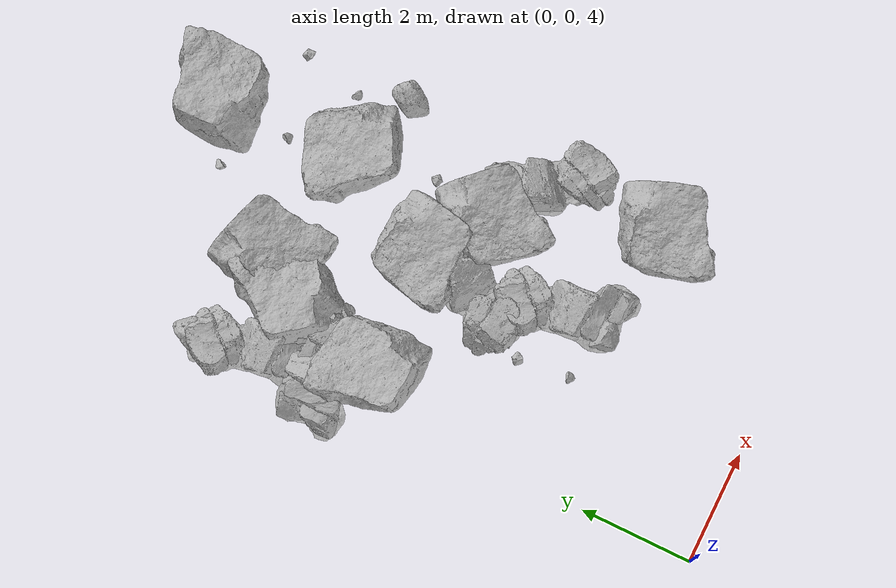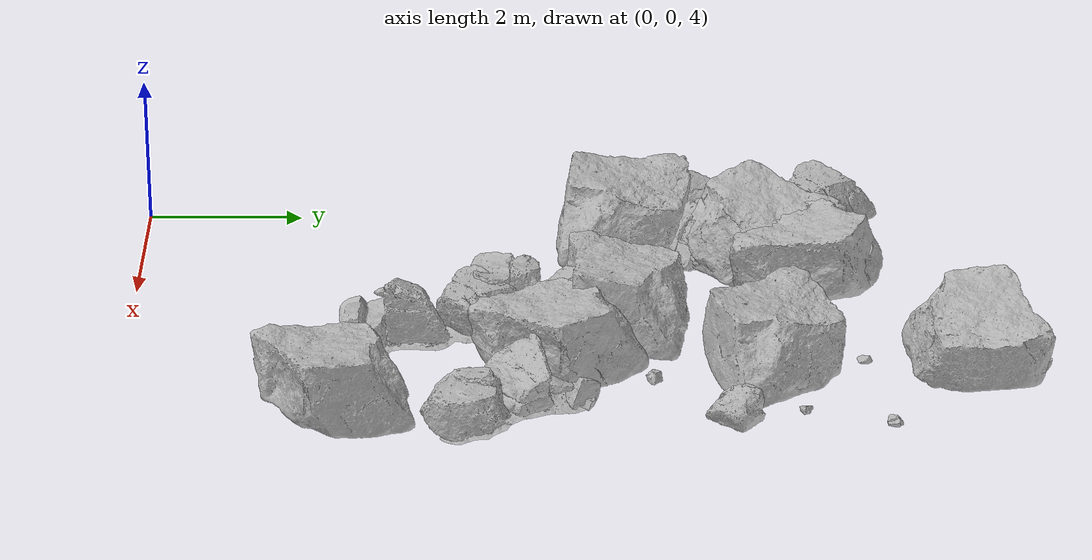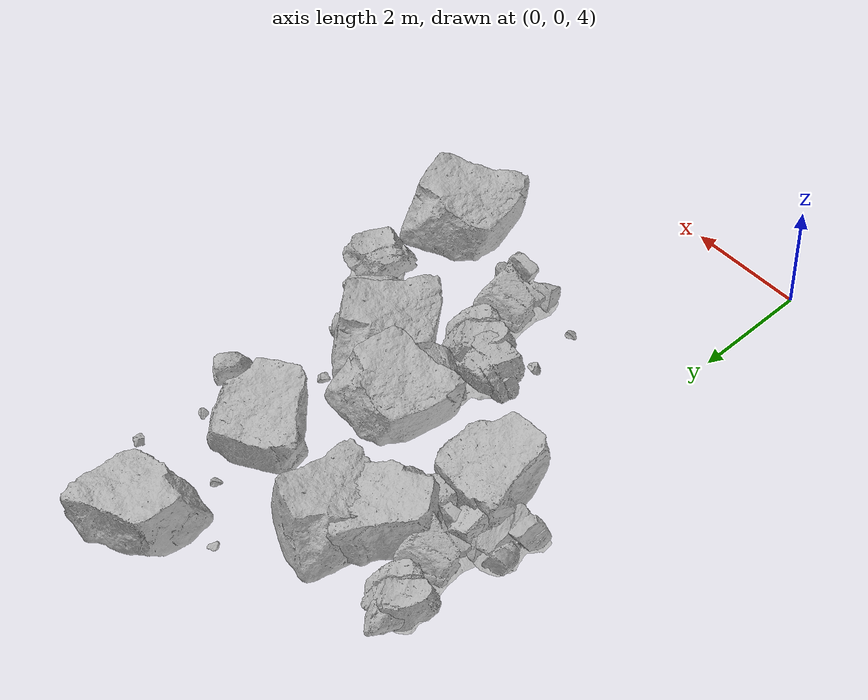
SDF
<sdf version="1.7">
 <world name="marsyard">
  <model name="Rock_26">
   <static>true</static>
   <pose>4.8005 8.5390 4.0000 0.0000 0.0000 2.1008</pose>
   <link name="link">
    <visual name="visual">
     <geometry><mesh><uri>package://rock_generator/rocks_ws/rock_7/meshes/rock_7.stl</uri></mesh></geometry>
    </visual>
    <collision name="collision">
     <geometry><mesh><uri>package://rock_generator/rocks_ws/rock_7/meshes/rock_7.stl</uri></mesh></geometry>
    </collision>
   </link>
  </model>
  <model name="Rock_33">
   <static>true</static>
   <pose>3.6703 8.1037 4.0000 0.0000 0.0000 1.2717</pose>
   <link name="link">
    <visual name="visual">
     <geometry><mesh><uri>package://rock_generator/rocks_ws/rock_1/meshes/rock_1.stl</uri></mesh></geometry>
    </visual>
    <collision name="collision">
     <geometry><mesh><uri>package://rock_generator/rocks_ws/rock_1/meshes/rock_1.stl</uri></mesh></geometry>
    </collision>
   </link>
  </model>
  <model name="Rock_75">
   <static>true</static>
   <pose>4.0380 6.6683 4.0000 0.0000 0.0000 -1.9028</pose>
   <link name="link">
    <visual name="visual">
     <geometry><mesh><uri>package://rock_generator/rocks_ws/rock_9/meshes/rock_9.stl</uri></mesh></geometry>
    </visual>
    <collision name="collision">
     <geometry><mesh><uri>package://rock_generator/rocks_ws/rock_9/meshes/rock_9.stl</uri></mesh></geometry>
    </collision>
   </link>
  </model>
  <model name="Rock_90">
   <static>true</static>
   <pose>4.6733 5.8507 4.0000 0.0000 0.0000 3.1198</pose>
   <link name="link">
    <visual name="visual">
     <geometry><mesh><uri>package://rock_generator/rocks_ws/rock_9/meshes/rock_9.stl</uri></mesh></geometry>
    </visual>
    <collision name="collision">
     <geometry><mesh><uri>package://rock_generator/rocks_ws/rock_9/meshes/rock_9.stl</uri></mesh></geometry>
    </collision>
   </link>
  </model>
  <model name="Rock_119">
   <static>true</static>
   <pose>2.9331 3.7971 4.0000 0.0000 0.0000 -1.2923</pose>
   <link name="link">
    <visual name="visual">
     <geometry><mesh><uri>package://rock_generator/rocks_ws/rock_2/meshes/rock_2.stl</uri></mesh></geometry>
    </visual>
    <collision name="collision">
     <geometry><mesh><uri>package://rock_generator/rocks_ws/rock_2/meshes/rock_2.stl</uri></mesh></geometry>
    </collision>
   </link>
  </model>
  <model name="Rock_130">
   <static>true</static>
   <pose>-0.1229 9.2451 4.0000 0.0000 0.0000 -1.0116</pose>
   <link name="link">
    <visual name="visual">
     <geometry><mesh><uri>package://rock_generator/rocks_ws/rock_3/meshes/rock_3.stl</uri></mesh></geometry>
    </visual>
    <collision name="collision">
     <geometry><mesh><uri>package://rock_generator/rocks_ws/rock_3/meshes/rock_3.stl</uri></mesh></geometry>
    </collision>
   </link>
  </model>
  <model name="Rock_143">
   <static>true</static>
   <pose>1.3108 5.9522 4.0000 0.0000 0.0000 -1.1698</pose>
   <link name="link">
    <visual name="visual">
     <geometry><mesh><uri>package://rock_generator/rocks_ws/rock_7/meshes/rock_7.stl</uri></mesh></geometry>
    </visual>
    <collision name="collision">
     <geometry><mesh><uri>package://rock_generator/rocks_ws/rock_7/meshes/rock_7.stl</uri></mesh></geometry>
    </collision>
   </link>
  </model>
  <model name="Rock_162">
   <static>true</static>
   <pose>2.5464 5.2759 4.0000 0.0000 0.0000 1.0002</pose>
   <link name="link">
    <visual name="visual">
     <geometry><mesh><uri>package://rock_generator/rocks_ws/rock_2/meshes/rock_2.stl</uri></mesh></geometry>
    </visual>
    <collision name="collision">
     <geometry><mesh><uri>package://rock_generator/rocks_ws/rock_2/meshes/rock_2.stl</uri></mesh></geometry>
    </collision>
   </link>
  </model>
  <model name="Rock_167">
   <static>true</static>
   <pose>3.8920 5.3587 4.0000 0.0000 0.0000 3.0819</pose>
   <link name="link">
    <visual name="visual">
     <geometry><mesh><uri>package://rock_generator/rocks_ws/rock_1/meshes/rock_1.stl</uri></mesh></geometry>
    </visual>
    <collision name="collision">
     <geometry><mesh><uri>package://rock_generator/rocks_ws/rock_1/meshes/rock_1.stl</uri></mesh></geometry>
    </collision>
   </link>
  </model>
  <model name="Rock_245">
   <static>true</static>
   <pose>4.9119 2.5807 4.0000 0.0000 0.0000 2.6608</pose>
   <link name="link">
    <visual name="visual">
     <geometry><mesh><uri>package://rock_generator/rocks_ws/rock_1/meshes/rock_1.stl</uri></mesh></geometry>
    </visual>
    <collision name="collision">
     <geometry><mesh><uri>package://rock_generator/rocks_ws/rock_1/meshes/rock_1.stl</uri></mesh></geometry>
    </collision>
   </link>
  </model>
  <model name="Rock_280">
   <static>true</static>
   <pose>1.0147 8.1435 4.0000 0.0000 0.0000 -0.0888</pose>
   <link name="link">
    <visual name="visual">
     <geometry><mesh><uri>package://rock_generator/rocks_ws/rock_1/meshes/rock_1.stl</uri></mesh></geometry>
    </visual>
    <collision name="collision">
     <geometry><mesh><uri>package://rock_generator/rocks_ws/rock_1/meshes/rock_1.stl</uri></mesh></geometry>
    </collision>
   </link>
  </model>
  <model name="Rock_285">
   <static>true</static>
   <pose>0.3363 7.1371 4.0000 0.0000 0.0000 -2.8032</pose>
   <link name="link">
    <visual name="visual">
     <geometry><mesh><uri>package://rock_generator/rocks_ws/rock_2/meshes/rock_2.stl</uri></mesh></geometry>
    </visual>
    <collision name="collision">
     <geometry><mesh><uri>package://rock_generator/rocks_ws/rock_2/meshes/rock_2.stl</uri></mesh></geometry>
    </collision>
   </link>
  </model>
  <model name="Rock_305">
   <static>true</static>
   <pose>5.0753 9.6176 4.0000 0.0000 0.0000 0.0708</pose>
   <link name="link">
    <visual name="visual">
     <geometry><mesh><uri>package://rock_generator/rocks_ws/rock_9/meshes/rock_9.stl</uri></mesh></geometry>
    </visual>
    <collision name="collision">
     <geometry><mesh><uri>package://rock_generator/rocks_ws/rock_9/meshes/rock_9.stl</uri></mesh></geometry>
    </collision>
   </link>
  </model>
  <model name="Rock_318">
   <static>true</static>
   <pose>0.0756 8.2296 4.0000 0.0000 0.0000 -1.2581</pose>
   <link name="link">
    <visual name="visual">
     <geometry><mesh><uri>package://rock_generator/rocks_ws/rock_2/meshes/rock_2.stl</uri></mesh></geometry>
    </visual>
    <collision name="collision">
     <geometry><mesh><uri>package://rock_generator/rocks_ws/rock_2/meshes/rock_2.stl</uri></mesh></geometry>
    </collision>
   </link>
  </model>
  <model name="Rock_326">
   <static>true</static>
   <pose>2.6662 10.1310 4.0000 0.0000 0.0000 0.6330</pose>
   <link name="link">
    <visual name="visual">
     <geometry><mesh><uri>package://rock_generator/rocks_ws/rock_7/meshes/rock_7.stl</uri></mesh></geometry>
    </visual>
    <collision name="collision">
     <geometry><mesh><uri>package://rock_generator/rocks_ws/rock_7/meshes/rock_7.stl</uri></mesh></geometry>
    </collision>
   </link>
  </model>
  <model name="Rock_331">
   <static>true</static>
   <pose>3.6014 9.3097 4.0000 0.0000 0.0000 -2.6539</pose>
   <link name="link">
    <visual name="visual">
     <geometry><mesh><uri>package://rock_generator/rocks_ws/rock_7/meshes/rock_7.stl</uri></mesh></geometry>
    </visual>
    <collision name="collision">
     <geometry><mesh><uri>package://rock_generator/rocks_ws/rock_7/meshes/rock_7.stl</uri></mesh></geometry>
    </collision>
   </link>
  </model>
  <model name="Rock_342">
   <static>true</static>
   <pose>5.0481 7.6724 4.0000 0.0000 0.0000 1.9803</pose>
   <link name="link">
    <visual name="visual">
     <geometry><mesh><uri>package://rock_generator/rocks_ws/rock_3/meshes/rock_3.stl</uri></mesh></geometry>
    </visual>
    <collision name="collision">
     <geometry><mesh><uri>package://rock_generator/rocks_ws/rock_3/meshes/rock_3.stl</uri></mesh></geometry>
    </collision>
   </link>
  </model>
  <model name="Rock_346">
   <static>true</static>
   <pose>1.8256 8.5752 4.0000 0.0000 0.0000 -2.6769</pose>
   <link name="link">
    <visual name="visual">
     <geometry><mesh><uri>package://rock_generator/rocks_ws/rock_1/meshes/rock_1.stl</uri></mesh></geometry>
    </visual>
    <collision name="collision">
     <geometry><mesh><uri>package://rock_generator/rocks_ws/rock_1/meshes/rock_1.stl</uri></mesh></geometry>
    </collision>
   </link>
  </model>
  <model name="Rock_355">
   <static>true</static>
   <pose>2.7368 6.1529 4.0000 0.0000 0.0000 2.1674</pose>
   <link name="link">
    <visual name="visual">
     <geometry><mesh><uri>package://rock_generator/rocks_ws/rock_1/meshes/rock_1.stl</uri></mesh></geometry>
    </visual>
    <collision name="collision">
     <geometry><mesh><uri>package://rock_generator/rocks_ws/rock_1/meshes/rock_1.stl</uri></mesh></geometry>
    </collision>
   </link>
  </model>
  <model name="Rock_362">
   <static>true</static>
   <pose>1.8490 4.0832 4.0000 0.0000 0.0000 1.2719</pose>
   <link name="link">
    <visual name="visual">
     <geometry><mesh><uri>package://rock_generator/rocks_ws/rock_9/meshes/rock_9.stl</uri></mesh></geometry>
    </visual>
    <collision name="collision">
     <geometry><mesh><uri>package://rock_generator/rocks_ws/rock_9/meshes/rock_9.stl</uri></mesh></geometry>
    </collision>
   </link>
  </model>
  <model name="Rock_364">
   <static>true</static>
   <pose>3.7679 10.8285 4.0000 0.0000 0.0000 -0.7122</pose>
   <link name="link">
    <visual name="visual">
     <geometry><mesh><uri>package://rock_generator/rocks_ws/rock_1/meshes/rock_1.stl</uri></mesh></geometry>
    </visual>
    <collision name="collision">
     <geometry><mesh><uri>package://rock_generator/rocks_ws/rock_1/meshes/rock_1.stl</uri></mesh></geometry>
    </collision>
   </link>
  </model>
  <model name="Rock_461">
   <static>true</static>
   <pose>1.9504 3.1519 4.0000 0.0000 0.0000 2.8814</pose>
   <link name="link">
    <visual name="visual">
     <geometry><mesh><uri>package://rock_generator/rocks_ws/rock_7/meshes/rock_7.stl</uri></mesh></geometry>
    </visual>
    <collision name="collision">
     <geometry><mesh><uri>package://rock_generator/rocks_ws/rock_7/meshes/rock_7.stl</uri></mesh></geometry>
    </collision>
   </link>
  </model>
  <model name="Rock_487">
   <static>true</static>
   <pose>4.7724 4.8595 4.0000 0.0000 0.0000 2.2564</pose>
   <link name="link">
    <visual name="visual">
     <geometry><mesh><uri>package://rock_generator/rocks_ws/rock_2/meshes/rock_2.stl</uri></mesh></geometry>
    </visual>
    <collision name="collision">
     <geometry><mesh><uri>package://rock_generator/rocks_ws/rock_2/meshes/rock_2.stl</uri></mesh></geometry>
    </collision>
   </link>
  </model>
  <model name="Rock_503">
   <static>true</static>
   <pose>0.4363 6.2956 4.0000 0.0000 0.0000 0.7345</pose>
   <link name="link">
    <visual name="visual">
     <geometry><mesh><uri>package://rock_generator/rocks_ws/rock_1/meshes/rock_1.stl</uri></mesh></geometry>
    </visual>
    <collision name="collision">
     <geometry><mesh><uri>package://rock_generator/rocks_ws/rock_1/meshes/rock_1.stl</uri></mesh></geometry>
    </collision>
   </link>
  </model>
 </world>
</sdf>
